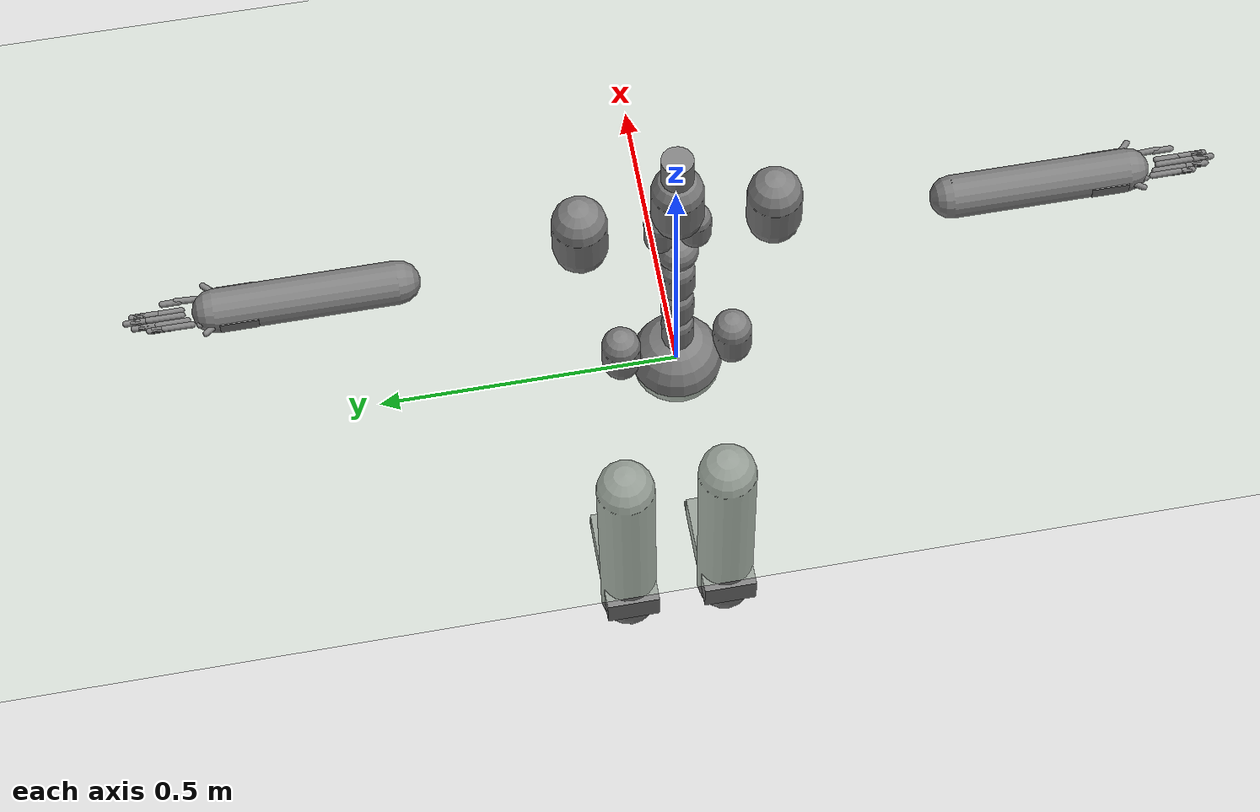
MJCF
<?xml version="1.0" ?>
<mujoco model="humanoid">
  <compiler coordinate="local"/>
  <statistic extent="2" center="0 0 1"/>
  <option timestep="0.00555"/>
  <default>
    <motor ctrlrange="-1 1" ctrllimited="true"/>
    <geom type="capsule" condim="1" friction="1.0 0.05 0.05" solimp=".9 .99 .003" solref=".015 1"/>
    <joint type="hinge" damping="0.1" stiffness="5" armature=".007" limited="true" solimplimit="0 .99 .01"/>
    <site size=".04" group="3"/>
  </default>
  <asset>
    <texture type="skybox" builtin="gradient" rgb1=".4 .5 .6" rgb2="0 0 0" width="100" height="100"/>
    <texture builtin="flat" height="1278" mark="cross" markrgb="1 1 1" name="texgeom" random="0.01" rgb1="0.8 0.6 0.4" rgb2="0.8 0.6 0.4" type="cube" width="127"/>
    <texture builtin="checker" height="100" name="texplane" rgb1="0 0 0" rgb2="0.8 0.8 0.8" type="2d" width="100"/>
    <material name="MatPlane" reflectance="0.5" shininess="1" specular="1" texrepeat="60 60" texture="texplane"/>
    <material name="geom" texture="texgeom" texuniform="true"/>
  </asset>
  <worldbody>
    <light cutoff="100" diffuse="1 1 1" dir="-0 0 -1.3" directional="true" exponent="1" pos="0 0 1.3" specular=".1 .1 .1"/>
    <geom conaffinity="1" condim="3" name="floor" pos="0 0 0" rgba="0.8 0.9 0.8 1" size="100 100 .2" type="plane" material="MatPlane"/>
    <body name="pHipOrigin" pos="0 0 0">
      <freejoint name="pHipOrigin"/>
      <geom type="sphere" contype="1" conaffinity="1" density="4629.6296296296305" size="0.07558" pos="0.0000 0.0000 -0.0000"/>
      <body name="jL5S1" pos="-0.00851642 0 0.07664758">
        <geom type="capsule" contype="1" conaffinity="1" density="1000" fromto="0 0 0.01542 0 0 0.05398" size="0.02699"/>
        <joint name="jL5S1_x" type="hinge" pos="0 0 0" axis="1 0 0" stiffness="500" damping="500" armature="0.02" range="-180.0000 180.0000"/>
        <joint name="jL5S1_y" type="hinge" pos="0 0 0" axis="0 1 0" stiffness="500" damping="500" armature="0.02" range="-180.0000 180.0000"/>
        <joint name="jL5S1_z" type="hinge" pos="0 0 0" axis="0 0 1" stiffness="500" damping="500" armature="0.02" range="-180.0000 180.0000"/>
        <body name="jL4L3" pos="0 0 0.07755035">
          <geom type="capsule" contype="1" conaffinity="1" density="1000" fromto="0 0 0.01551 0 0 0.05429" size="0.02714"/>
          <joint name="jL4L3_x" type="hinge" pos="0 0 0" axis="1 0 0" stiffness="500" damping="500" armature="0.02" range="-180.0000 180.0000"/>
          <joint name="jL4L3_y" type="hinge" pos="0 0 0" axis="0 1 0" stiffness="500" damping="500" armature="0.02" range="-180.0000 180.0000"/>
          <joint name="jL4L3_z" type="hinge" pos="0 0 0" axis="0 0 1" stiffness="500" damping="500" armature="0.02" range="-180.0000 180.0000"/>
          <body name="jL1T12" pos="-0.00063742 0 0.08262086">
            <geom type="capsule" contype="1" conaffinity="1" density="1000" fromto="0 0 0.01652 0 0 0.05784" size="0.02892"/>
            <joint name="jL1T12_x" type="hinge" pos="0 0 0" axis="1 0 0" stiffness="500" damping="500" armature="0.02" range="-180.0000 180.0000"/>
            <joint name="jL1T12_y" type="hinge" pos="0 0 0" axis="0 1 0" stiffness="500" damping="500" armature="0.02" range="-180.0000 180.0000"/>
            <joint name="jL1T12_z" type="hinge" pos="0 0 0" axis="0 0 1" stiffness="500" damping="500" armature="0.02" range="-180.0000 180.0000"/>
            <body name="jT9T8" pos="-0.00064641 0 0.08362377">
              <geom type="sphere" contype="1" conaffinity="1" density="1000" size="0.03345" pos="0.000 0.0000 0.033451"/>
              <joint name="jT9T8_x" type="hinge" pos="0 0 0" axis="1 0 0" stiffness="500" damping="500" armature="0.02" range="-180.0000 180.0000"/>
              <joint name="jT9T8_y" type="hinge" pos="0 0 0" axis="0 1 0" stiffness="500" damping="500" armature="0.02" range="-180.0000 180.0000"/>
              <joint name="jT9T8_z" type="hinge" pos="0 0 0" axis="0 0 1" stiffness="500" damping="500" armature="0.02" range="-180.0000 180.0000"/>
              <body name="jT1C7" pos="0 0 0.11981401">
                <geom type="capsule" contype="1" conaffinity="1" density="1000" fromto="0 0 0.02396 0 0 0.08387" size="0.04193"/>
                <joint name="jT1C7_x" type="hinge" pos="0 0 0" axis="1 0 0" stiffness="500" damping="500" armature="0.02" range="-180.0000 180.0000"/>
                <joint name="jT1C7_y" type="hinge" pos="0 0 0" axis="0 1 0" stiffness="500" damping="500" armature="0.02" range="-180.0000 180.0000"/>
                <joint name="jT1C7_z" type="hinge" pos="0 0 0" axis="0 0 1" stiffness="500" damping="500" armature="0.02" range="-180.0000 180.0000"/>
                <body name="jC1Head" pos="0.00099304 0 0.08417254">
                  <geom type="cylinder" contype="1" conaffinity="1" density="1000" fromto="0 0 0 0 0 0.08418" size="0.02525"/>
                  <joint name="jC1Head_x" type="hinge" pos="0 0 0" axis="1 0 0" stiffness="500" damping="500" armature="0.02" range="-180.0000 180.0000"/>
                  <joint name="jC1Head_y" type="hinge" pos="0 0 0" axis="0 1 0" stiffness="500" damping="500" armature="0.02" range="-180.0000 180.0000"/>
                  <joint name="jC1Head_z" type="hinge" pos="0 0 0" axis="0 0 1" stiffness="500" damping="500" armature="0.02" range="-180.0000 180.0000"/>
                </body>
              </body>
              <body name="jRightT4Shoulder" pos="0 -0.02793902 0.06812147">
                <geom type="capsule" contype="1" conaffinity="1" density="1000" fromto="0 0 0.01473 0 0 0.05154" size="0.02577"/>
                <joint name="jRightT4Shoulder_x" type="hinge" pos="0 0 0" axis="1 0 0" stiffness="500" damping="500" armature="0.02" range="-180.0000 180.0000"/>
                <joint name="jRightT4Shoulder_y" type="hinge" pos="0 0 0" axis="0 1 0" stiffness="500" damping="500" armature="0.02" range="-180.0000 180.0000"/>
                <joint name="jRightT4Shoulder_z" type="hinge" pos="0 0 0" axis="0 0 1" stiffness="500" damping="500" armature="0.02" range="-180.0000 180.0000"/>
                <body name="jRightShoulder" pos="0 -0.12468250 0">
                  <geom type="capsule" contype="1" conaffinity="1" density="1000" fromto="0 0 0.02494 0 0 0.08728" size="0.04364"/>
                  <joint name="jRightShoulder_x" type="hinge" pos="0 0 0" axis="1 0 0" stiffness="500" damping="500" armature="0.02" range="-180.0000 180.0000"/>
                  <joint name="jRightShoulder_y" type="hinge" pos="0 0 0" axis="0 1 0" stiffness="500" damping="500" armature="0.02" range="-180.0000 180.0000"/>
                  <joint name="jRightShoulder_z" type="hinge" pos="0 0 0" axis="0 0 1" stiffness="500" damping="500" armature="0.02" range="-180.0000 180.0000"/>
                  <body name="jRightElbow" pos="0 -0.28514770 0">
                    <geom type="capsule" contype="1" conaffinity="1" density="1000" fromto="0 0 0 0.00000000 -0.28514770 0.00000000" size="0.03422"/>
                    <joint name="jRightElbow_x" type="hinge" pos="0 0 0" axis="1 0 0" stiffness="500" damping="500" armature="0.02" range="-180.0000 180.0000"/>
                    <joint name="jRightElbow_y" type="hinge" pos="0 0 0" axis="0 1 0" stiffness="500" damping="500" armature="0.02" range="-180.0000 180.0000"/>
                    <joint name="jRightElbow_z" type="hinge" pos="0 0 0" axis="0 0 1" stiffness="500" damping="500" armature="0.02" range="-180.0000 180.0000"/>
                    <body name="jRightWrist" pos="0.00010069 -0.25017897 0">
                      <geom density="1000" type="box" pos="0 0 0" size="0.035 0.03 0.01" quat="1.0000 0.0000 0.0000 0.0000"/>
                      <joint name="jRightWrist_x" type="hinge" pos="0 0 0" axis="1 0 0" stiffness="500" damping="500" armature="0.02" range="-180.0000 180.0000"/>
                      <joint name="jRightWrist_y" type="hinge" pos="0 0 0" axis="0 1 0" stiffness="500" damping="500" armature="0.02" range="-180.0000 180.0000"/>
                      <joint name="jRightWrist_z" type="hinge" pos="0 0 0" axis="0 0 1" stiffness="500" damping="500" armature="0.02" range="-180.0000 180.0000"/>
                      <body name="jRightFirstCMC" pos="0.02501759 -0.02398076 -0.00113295">
                        <geom type="capsule" contype="1" conaffinity="1" density="1000" fromto="0 0 0 0.02501759 -0.02398076 -0.00113295" size="0.005"/>
                        <joint name="jRightFirstCMC_x" type="hinge" pos="0 0 0" axis="1 0 0" stiffness="500" damping="500" armature="0.02" range="-180.0000 180.0000"/>
                        <joint name="jRightFirstCMC_y" type="hinge" pos="0 0 0" axis="0 1 0" stiffness="500" damping="500" armature="0.02" range="-180.0000 180.0000"/>
                        <joint name="jRightFirstCMC_z" type="hinge" pos="0 0 0" axis="0 0 1" stiffness="500" damping="500" armature="0.02" range="-180.0000 180.0000"/>
                        <body name="jRightFirstMCP" pos="0.00121909 -0.03440180 0.00072691">
                          <geom type="capsule" contype="1" conaffinity="1" density="1000" fromto="0 0 0 0.00121909 -0.03440180 0.00072691" size="0.005"/>
                          <joint name="jRightFirstMCP_x" type="hinge" pos="0 0 0" axis="1 0 0" stiffness="500" damping="500" armature="0.02" range="-180.0000 180.0000"/>
                          <joint name="jRightFirstMCP_y" type="hinge" pos="0 0 0" axis="0 1 0" stiffness="500" damping="500" armature="0.02" range="-180.0000 180.0000"/>
                          <joint name="jRightFirstMCP_z" type="hinge" pos="0 0 0" axis="0 0 1" stiffness="500" damping="500" armature="0.02" range="-180.0000 180.0000"/>
                          <body name="jRightIP" pos="0 -0.02740153 0">
                            <geom type="capsule" contype="1" conaffinity="1" density="1000" fromto="0 0 0 0.00000000 -0.02740153 0.00000000" size="0.005"/>
                            <joint name="jRightIP_x" type="hinge" pos="0 0 0" axis="1 0 0" stiffness="500" damping="500" armature="0.02" range="-180.0000 180.0000"/>
                            <joint name="jRightIP_y" type="hinge" pos="0 0 0" axis="0 1 0" stiffness="500" damping="500" armature="0.02" range="-180.0000 180.0000"/>
                            <joint name="jRightIP_z" type="hinge" pos="0 0 0" axis="0 0 1" stiffness="500" damping="500" armature="0.02" range="-180.0000 180.0000"/>
                          </body>
                        </body>
                      </body>
                      <body name="jRightSecondCMC" pos="0.01038139 -0.03033113 -0.00052905">
                        <geom type="capsule" contype="1" conaffinity="1" density="1000" fromto="0 0 0 0.01038139 -0.03033113 -0.00052905" size="0.005"/>
                        <joint name="jRightSecondCMC_x" type="hinge" pos="0 0 0" axis="1 0 0" stiffness="500" damping="500" armature="0.02" range="-180.0000 180.0000"/>
                        <joint name="jRightSecondCMC_y" type="hinge" pos="0 0 0" axis="0 1 0" stiffness="500" damping="500" armature="0.02" range="-180.0000 180.0000"/>
                        <joint name="jRightSecondCMC_z" type="hinge" pos="0 0 0" axis="0 0 1" stiffness="500" damping="500" armature="0.02" range="-180.0000 180.0000"/>
                        <body name="jRightSecondMCP" pos="-0.00034842 -0.05556996 -0.00057644">
                          <geom type="capsule" contype="1" conaffinity="1" density="1000" fromto="0 0 0 -0.00034842 -0.05556996 -0.00057644" size="0.005"/>
                          <joint name="jRightSecondMCP_x" type="hinge" pos="0 0 0" axis="1 0 0" stiffness="500" damping="500" armature="0.02" range="-180.0000 180.0000"/>
                          <joint name="jRightSecondMCP_y" type="hinge" pos="0 0 0" axis="0 1 0" stiffness="500" damping="500" armature="0.02" range="-180.0000 180.0000"/>
                          <joint name="jRightSecondMCP_z" type="hinge" pos="0 0 0" axis="0 0 1" stiffness="500" damping="500" armature="0.02" range="-180.0000 180.0000"/>
                          <body name="jRightSecondPIP" pos="0 -0.03668946 0">
                            <geom type="capsule" contype="1" conaffinity="1" density="1000" fromto="0 0 0 0.00000000 -0.03668946 0.00000000" size="0.005"/>
                            <joint name="jRightSecondPIP_x" type="hinge" pos="0 0 0" axis="1 0 0" stiffness="500" damping="500" armature="0.02" range="-180.0000 180.0000"/>
                            <joint name="jRightSecondPIP_y" type="hinge" pos="0 0 0" axis="0 1 0" stiffness="500" damping="500" armature="0.02" range="-180.0000 180.0000"/>
                            <joint name="jRightSecondPIP_z" type="hinge" pos="0 0 0" axis="0 0 1" stiffness="500" damping="500" armature="0.02" range="-180.0000 180.0000"/>
                            <body name="jRightSecondDIP" pos="0 -0.01992485 0">
                              <geom type="capsule" contype="1" conaffinity="1" density="1000" fromto="0 0 0 0.00000000 -0.01992485 0.00000000" size="0.005"/>
                              <joint name="jRightSecondDIP_x" type="hinge" pos="0 0 0" axis="1 0 0" stiffness="500" damping="500" armature="0.02" range="-180.0000 180.0000"/>
                              <joint name="jRightSecondDIP_y" type="hinge" pos="0 0 0" axis="0 1 0" stiffness="500" damping="500" armature="0.02" range="-180.0000 180.0000"/>
                              <joint name="jRightSecondDIP_z" type="hinge" pos="0 0 0" axis="0 0 1" stiffness="500" damping="500" armature="0.02" range="-180.0000 180.0000"/>
                            </body>
                          </body>
                        </body>
                      </body>
                      <body name="jRightThirdCMC" pos="-0.00058933 -0.03186959 0.00133985">
                        <geom type="capsule" contype="1" conaffinity="1" density="1000" fromto="0 0 0 -0.00058933 -0.03186959 0.00133985" size="0.005"/>
                        <joint name="jRightThirdCMC_x" type="hinge" pos="0 0 0" axis="1 0 0" stiffness="500" damping="500" armature="0.02" range="-180.0000 180.0000"/>
                        <joint name="jRightThirdCMC_y" type="hinge" pos="0 0 0" axis="0 1 0" stiffness="500" damping="500" armature="0.02" range="-180.0000 180.0000"/>
                        <joint name="jRightThirdCMC_z" type="hinge" pos="0 0 0" axis="0 0 1" stiffness="500" damping="500" armature="0.02" range="-180.0000 180.0000"/>
                        <body name="jRightThirdMCP" pos="-0.00064230 -0.05321438 0.00144776">
                          <geom type="capsule" contype="1" conaffinity="1" density="1000" fromto="0 0 0 -0.00064230 -0.05321438 0.00144776" size="0.005"/>
                          <joint name="jRightThirdMCP_x" type="hinge" pos="0 0 0" axis="1 0 0" stiffness="500" damping="500" armature="0.02" range="-180.0000 180.0000"/>
                          <joint name="jRightThirdMCP_y" type="hinge" pos="0 0 0" axis="0 1 0" stiffness="500" damping="500" armature="0.02" range="-180.0000 180.0000"/>
                          <joint name="jRightThirdMCP_z" type="hinge" pos="0 0 0" axis="0 0 1" stiffness="500" damping="500" armature="0.02" range="-180.0000 180.0000"/>
                          <body name="jRightThirdPIP" pos="0 -0.03993919 0">
                            <geom type="capsule" contype="1" conaffinity="1" density="1000" fromto="0 0 0 0.00000000 -0.03993919 0.00000000" size="0.005"/>
                            <joint name="jRightThirdPIP_x" type="hinge" pos="0 0 0" axis="1 0 0" stiffness="500" damping="500" armature="0.02" range="-180.0000 180.0000"/>
                            <joint name="jRightThirdPIP_y" type="hinge" pos="0 0 0" axis="0 1 0" stiffness="500" damping="500" armature="0.02" range="-180.0000 180.0000"/>
                            <joint name="jRightThirdPIP_z" type="hinge" pos="0 0 0" axis="0 0 1" stiffness="500" damping="500" armature="0.02" range="-180.0000 180.0000"/>
                            <body name="jRightThirdDIP" pos="0 -0.02361077 0">
                              <geom type="capsule" contype="1" conaffinity="1" density="1000" fromto="0 0 0 0.00000000 -0.02361077 0.00000000" size="0.005"/>
                              <joint name="jRightThirdDIP_x" type="hinge" pos="0 0 0" axis="1 0 0" stiffness="500" damping="500" armature="0.02" range="-180.0000 180.0000"/>
                              <joint name="jRightThirdDIP_y" type="hinge" pos="0 0 0" axis="0 1 0" stiffness="500" damping="500" armature="0.02" range="-180.0000 180.0000"/>
                              <joint name="jRightThirdDIP_z" type="hinge" pos="0 0 0" axis="0 0 1" stiffness="500" damping="500" armature="0.02" range="-180.0000 180.0000"/>
                            </body>
                          </body>
                        </body>
                      </body>
                      <body name="jRightFourthCMC" pos="-0.01083873 -0.03018766 0.00071057">
                        <geom type="capsule" contype="1" conaffinity="1" density="1000" fromto="0 0 0 -0.01083873 -0.03018766 0.00071057" size="0.005"/>
                        <joint name="jRightFourthCMC_x" type="hinge" pos="0 0 0" axis="1 0 0" stiffness="500" damping="500" armature="0.02" range="-180.0000 180.0000"/>
                        <joint name="jRightFourthCMC_y" type="hinge" pos="0 0 0" axis="0 1 0" stiffness="500" damping="500" armature="0.02" range="-180.0000 180.0000"/>
                        <joint name="jRightFourthCMC_z" type="hinge" pos="0 0 0" axis="0 0 1" stiffness="500" damping="500" armature="0.02" range="-180.0000 180.0000"/>
                        <body name="jRightFourthMCP" pos="-0.00034617 -0.04744587 0.00074541">
                          <geom type="capsule" contype="1" conaffinity="1" density="1000" fromto="0 0 0 -0.00034617 -0.04744587 0.00074541" size="0.005"/>
                          <joint name="jRightFourthMCP_x" type="hinge" pos="0 0 0" axis="1 0 0" stiffness="500" damping="500" armature="0.02" range="-180.0000 180.0000"/>
                          <joint name="jRightFourthMCP_y" type="hinge" pos="0 0 0" axis="0 1 0" stiffness="500" damping="500" armature="0.02" range="-180.0000 180.0000"/>
                          <joint name="jRightFourthMCP_z" type="hinge" pos="0 0 0" axis="0 0 1" stiffness="500" damping="500" armature="0.02" range="-180.0000 180.0000"/>
                          <body name="jRightFourthPIP" pos="0 -0.03789558 0">
                            <geom type="capsule" contype="1" conaffinity="1" density="1000" fromto="0 0 0 0.00000000 -0.03789558 0.00000000" size="0.005"/>
                            <joint name="jRightFourthPIP_x" type="hinge" pos="0 0 0" axis="1 0 0" stiffness="500" damping="500" armature="0.02" range="-180.0000 180.0000"/>
                            <joint name="jRightFourthPIP_y" type="hinge" pos="0 0 0" axis="0 1 0" stiffness="500" damping="500" armature="0.02" range="-180.0000 180.0000"/>
                            <joint name="jRightFourthPIP_z" type="hinge" pos="0 0 0" axis="0 0 1" stiffness="500" damping="500" armature="0.02" range="-180.0000 180.0000"/>
                            <body name="jRightFourthDIP" pos="0 -0.02244063 0">
                              <geom type="capsule" contype="1" conaffinity="1" density="1000" fromto="0 0 0 0.00000000 -0.02244063 0.00000000" size="0.005"/>
                              <joint name="jRightFourthDIP_x" type="hinge" pos="0 0 0" axis="1 0 0" stiffness="500" damping="500" armature="0.02" range="-180.0000 180.0000"/>
                              <joint name="jRightFourthDIP_y" type="hinge" pos="0 0 0" axis="0 1 0" stiffness="500" damping="500" armature="0.02" range="-180.0000 180.0000"/>
                              <joint name="jRightFourthDIP_z" type="hinge" pos="0 0 0" axis="0 0 1" stiffness="500" damping="500" armature="0.02" range="-180.0000 180.0000"/>
                            </body>
                          </body>
                        </body>
                      </body>
                      <body name="jRightFifthCMC" pos="-0.01904417 -0.02653587 0.00052347">
                        <geom type="capsule" contype="1" conaffinity="1" density="1000" fromto="0 0 0 -0.01904417 -0.02653587 0.00052347" size="0.005"/>
                        <joint name="jRightFifthCMC_x" type="hinge" pos="0 0 0" axis="1 0 0" stiffness="500" damping="500" armature="0.02" range="-180.0000 180.0000"/>
                        <joint name="jRightFifthCMC_y" type="hinge" pos="0 0 0" axis="0 1 0" stiffness="500" damping="500" armature="0.02" range="-180.0000 180.0000"/>
                        <joint name="jRightFifthCMC_z" type="hinge" pos="0 0 0" axis="0 0 1" stiffness="500" damping="500" armature="0.02" range="-180.0000 180.0000"/>
                        <body name="jRightFifthMCP" pos="-0.00000665 -0.04503981 0.00061980">
                          <geom type="capsule" contype="1" conaffinity="1" density="1000" fromto="0 0 0 -0.00000665 -0.04503981 0.00061980" size="0.005"/>
                          <joint name="jRightFifthMCP_x" type="hinge" pos="0 0 0" axis="1 0 0" stiffness="500" damping="500" armature="0.02" range="-180.0000 180.0000"/>
                          <joint name="jRightFifthMCP_y" type="hinge" pos="0 0 0" axis="0 1 0" stiffness="500" damping="500" armature="0.02" range="-180.0000 180.0000"/>
                          <joint name="jRightFifthMCP_z" type="hinge" pos="0 0 0" axis="0 0 1" stiffness="500" damping="500" armature="0.02" range="-180.0000 180.0000"/>
                          <body name="jRightFifthPIP" pos="0 -0.03164419 0">
                            <geom type="capsule" contype="1" conaffinity="1" density="1000" fromto="0 0 0 0.00000000 -0.03164419 0.00000000" size="0.005"/>
                            <joint name="jRightFifthPIP_x" type="hinge" pos="0 0 0" axis="1 0 0" stiffness="500" damping="500" armature="0.02" range="-180.0000 180.0000"/>
                            <joint name="jRightFifthPIP_y" type="hinge" pos="0 0 0" axis="0 1 0" stiffness="500" damping="500" armature="0.02" range="-180.0000 180.0000"/>
                            <joint name="jRightFifthPIP_z" type="hinge" pos="0 0 0" axis="0 0 1" stiffness="500" damping="500" armature="0.02" range="-180.0000 180.0000"/>
                            <body name="jRightFifthDIP" pos="0 -0.01717060 0">
                              <geom type="capsule" contype="1" conaffinity="1" density="1000" fromto="0 0 0 0.00000000 -0.01717060 0.00000000" size="0.005"/>
                              <joint name="jRightFifthDIP_x" type="hinge" pos="0 0 0" axis="1 0 0" stiffness="500" damping="500" armature="0.02" range="-180.0000 180.0000"/>
                              <joint name="jRightFifthDIP_y" type="hinge" pos="0 0 0" axis="0 1 0" stiffness="500" damping="500" armature="0.02" range="-180.0000 180.0000"/>
                              <joint name="jRightFifthDIP_z" type="hinge" pos="0 0 0" axis="0 0 1" stiffness="500" damping="500" armature="0.02" range="-180.0000 180.0000"/>
                            </body>
                          </body>
                        </body>
                      </body>
                    </body>
                  </body>
                </body>
              </body>
              <body name="jLeftT4Shoulder" pos="0 0.02790276 0.06803305">
                <geom type="capsule" contype="1" conaffinity="1" density="1000" fromto="0 0 0.01471 0 0 0.05147" size="0.02574"/>
                <joint name="jLeftT4Shoulder_x" type="hinge" pos="0 0 0" axis="1 0 0" stiffness="500" damping="500" armature="0.02" range="-180.0000 180.0000"/>
                <joint name="jLeftT4Shoulder_y" type="hinge" pos="0 0 0" axis="0 1 0" stiffness="500" damping="500" armature="0.02" range="-180.0000 180.0000"/>
                <joint name="jLeftT4Shoulder_z" type="hinge" pos="0 0 0" axis="0 0 1" stiffness="500" damping="500" armature="0.02" range="-180.0000 180.0000"/>
                <body name="jLeftShoulder" pos="0 0.12534131 0">
                  <geom type="capsule" contype="1" conaffinity="1" density="1000" fromto="0 0 0.02507 0 0 0.08774" size="0.04387"/>
                  <joint name="jLeftShoulder_x" type="hinge" pos="0 0 0" axis="1 0 0" stiffness="500" damping="500" armature="0.02" range="-180.0000 180.0000"/>
                  <joint name="jLeftShoulder_y" type="hinge" pos="0 0 0" axis="0 1 0" stiffness="500" damping="500" armature="0.02" range="-180.0000 180.0000"/>
                  <joint name="jLeftShoulder_z" type="hinge" pos="0 0 0" axis="0 0 1" stiffness="500" damping="500" armature="0.02" range="-180.0000 180.0000"/>
                  <body name="jLeftElbow" pos="0 0.28614241 0">
                    <geom type="capsule" contype="1" conaffinity="1" density="1000" fromto="0 0 0 0.00000000 0.28614241 0.00000000" size="0.03434"/>
                    <joint name="jLeftElbow_x" type="hinge" pos="0 0 0" axis="1 0 0" stiffness="500" damping="500" armature="0.02" range="-180.0000 180.0000"/>
                    <joint name="jLeftElbow_y" type="hinge" pos="0 0 0" axis="0 1 0" stiffness="500" damping="500" armature="0.02" range="-180.0000 180.0000"/>
                    <joint name="jLeftElbow_z" type="hinge" pos="0 0 0" axis="0 0 1" stiffness="500" damping="500" armature="0.02" range="-180.0000 180.0000"/>
                    <body name="jLeftWrist" pos="0.00010069 0.25017897 0">
                      <geom density="1000" type="box" pos="0 0 0" size="0.035 0.03 0.01" quat="1.0000 0.0000 0.0000 0.0000"/>
                      <joint name="jLeftWrist_x" type="hinge" pos="0 0 0" axis="1 0 0" stiffness="500" damping="500" armature="0.02" range="-180.0000 180.0000"/>
                      <joint name="jLeftWrist_y" type="hinge" pos="0 0 0" axis="0 1 0" stiffness="500" damping="500" armature="0.02" range="-180.0000 180.0000"/>
                      <joint name="jLeftWrist_z" type="hinge" pos="0 0 0" axis="0 0 1" stiffness="500" damping="500" armature="0.02" range="-180.0000 180.0000"/>
                      <body name="jLeftFirstCMC" pos="0.02448632 0.02454415 -0.00109593">
                        <geom type="capsule" contype="1" conaffinity="1" density="1000" fromto="0 0 0 0.02448632 0.02454415 -0.00109593" size="0.005"/>
                        <joint name="jLeftFirstCMC_x" type="hinge" pos="0 0 0" axis="1 0 0" stiffness="500" damping="500" armature="0.02" range="-180.0000 180.0000"/>
                        <joint name="jLeftFirstCMC_y" type="hinge" pos="0 0 0" axis="0 1 0" stiffness="500" damping="500" armature="0.02" range="-180.0000 180.0000"/>
                        <joint name="jLeftFirstCMC_z" type="hinge" pos="0 0 0" axis="0 0 1" stiffness="500" damping="500" armature="0.02" range="-180.0000 180.0000"/>
                        <body name="jLeftFirstMCP" pos="0.00120734 0.03440103 0.00070840">
                          <geom type="capsule" contype="1" conaffinity="1" density="1000" fromto="0 0 0 0.00120734 0.03440103 0.00070840" size="0.005"/>
                          <joint name="jLeftFirstMCP_x" type="hinge" pos="0 0 0" axis="1 0 0" stiffness="500" damping="500" armature="0.02" range="-180.0000 180.0000"/>
                          <joint name="jLeftFirstMCP_y" type="hinge" pos="0 0 0" axis="0 1 0" stiffness="500" damping="500" armature="0.02" range="-180.0000 180.0000"/>
                          <joint name="jLeftFirstMCP_z" type="hinge" pos="0 0 0" axis="0 0 1" stiffness="500" damping="500" armature="0.02" range="-180.0000 180.0000"/>
                          <body name="jLeftIP" pos="0 0.02740153 0">
                            <geom type="capsule" contype="1" conaffinity="1" density="1000" fromto="0 0 0 0.00000000 0.02740153 0.00000000" size="0.005"/>
                            <joint name="jLeftIP_x" type="hinge" pos="0 0 0" axis="1 0 0" stiffness="500" damping="500" armature="0.02" range="-180.0000 180.0000"/>
                            <joint name="jLeftIP_y" type="hinge" pos="0 0 0" axis="0 1 0" stiffness="500" damping="500" armature="0.02" range="-180.0000 180.0000"/>
                            <joint name="jLeftIP_z" type="hinge" pos="0 0 0" axis="0 0 1" stiffness="500" damping="500" armature="0.02" range="-180.0000 180.0000"/>
                          </body>
                        </body>
                      </body>
                      <body name="jLeftSecondCMC" pos="0.01050096 0.03027532 -0.00053342">
                        <geom type="capsule" contype="1" conaffinity="1" density="1000" fromto="0 0 0 0.01050096 0.03027532 -0.00053342" size="0.005"/>
                        <joint name="jLeftSecondCMC_x" type="hinge" pos="0 0 0" axis="1 0 0" stiffness="500" damping="500" armature="0.02" range="-180.0000 180.0000"/>
                        <joint name="jLeftSecondCMC_y" type="hinge" pos="0 0 0" axis="0 1 0" stiffness="500" damping="500" armature="0.02" range="-180.0000 180.0000"/>
                        <joint name="jLeftSecondCMC_z" type="hinge" pos="0 0 0" axis="0 0 1" stiffness="500" damping="500" armature="0.02" range="-180.0000 180.0000"/>
                        <body name="jLeftSecondMCP" pos="-0.00030380 0.05557110 -0.00058357">
                          <geom type="capsule" contype="1" conaffinity="1" density="1000" fromto="0 0 0 -0.00030380 0.05557110 -0.00058357" size="0.005"/>
                          <joint name="jLeftSecondMCP_x" type="hinge" pos="0 0 0" axis="1 0 0" stiffness="500" damping="500" armature="0.02" range="-180.0000 180.0000"/>
                          <joint name="jLeftSecondMCP_y" type="hinge" pos="0 0 0" axis="0 1 0" stiffness="500" damping="500" armature="0.02" range="-180.0000 180.0000"/>
                          <joint name="jLeftSecondMCP_z" type="hinge" pos="0 0 0" axis="0 0 1" stiffness="500" damping="500" armature="0.02" range="-180.0000 180.0000"/>
                          <body name="jLeftSecondPIP" pos="0 0.03668946 0">
                            <geom type="capsule" contype="1" conaffinity="1" density="1000" fromto="0 0 0 0.00000000 0.03668946 0.00000000" size="0.005"/>
                            <joint name="jLeftSecondPIP_x" type="hinge" pos="0 0 0" axis="1 0 0" stiffness="500" damping="500" armature="0.02" range="-180.0000 180.0000"/>
                            <joint name="jLeftSecondPIP_y" type="hinge" pos="0 0 0" axis="0 1 0" stiffness="500" damping="500" armature="0.02" range="-180.0000 180.0000"/>
                            <joint name="jLeftSecondPIP_z" type="hinge" pos="0 0 0" axis="0 0 1" stiffness="500" damping="500" armature="0.02" range="-180.0000 180.0000"/>
                            <body name="jLeftSecondDIP" pos="0 0.01992485 0">
                              <geom type="capsule" contype="1" conaffinity="1" density="1000" fromto="0 0 0 0.00000000 0.01992485 0.00000000" size="0.005"/>
                              <joint name="jLeftSecondDIP_x" type="hinge" pos="0 0 0" axis="1 0 0" stiffness="500" damping="500" armature="0.02" range="-180.0000 180.0000"/>
                              <joint name="jLeftSecondDIP_y" type="hinge" pos="0 0 0" axis="0 1 0" stiffness="500" damping="500" armature="0.02" range="-180.0000 180.0000"/>
                              <joint name="jLeftSecondDIP_z" type="hinge" pos="0 0 0" axis="0 0 1" stiffness="500" damping="500" armature="0.02" range="-180.0000 180.0000"/>
                            </body>
                          </body>
                        </body>
                      </body>
                      <body name="jLeftThirdCMC" pos="-0.00059279 0.03187245 0.00129518">
                        <geom type="capsule" contype="1" conaffinity="1" density="1000" fromto="0 0 0 -0.00059279 0.03187245 0.00129518" size="0.005"/>
                        <joint name="jLeftThirdCMC_x" type="hinge" pos="0 0 0" axis="1 0 0" stiffness="500" damping="500" armature="0.02" range="-180.0000 180.0000"/>
                        <joint name="jLeftThirdCMC_y" type="hinge" pos="0 0 0" axis="0 1 0" stiffness="500" damping="500" armature="0.02" range="-180.0000 180.0000"/>
                        <joint name="jLeftThirdCMC_z" type="hinge" pos="0 0 0" axis="0 0 1" stiffness="500" damping="500" armature="0.02" range="-180.0000 180.0000"/>
                        <body name="jLeftThirdMCP" pos="-0.00064748 0.05321541 0.00141865">
                          <geom type="capsule" contype="1" conaffinity="1" density="1000" fromto="0 0 0 -0.00064748 0.05321541 0.00141865" size="0.005"/>
                          <joint name="jLeftThirdMCP_x" type="hinge" pos="0 0 0" axis="1 0 0" stiffness="500" damping="500" armature="0.02" range="-180.0000 180.0000"/>
                          <joint name="jLeftThirdMCP_y" type="hinge" pos="0 0 0" axis="0 1 0" stiffness="500" damping="500" armature="0.02" range="-180.0000 180.0000"/>
                          <joint name="jLeftThirdMCP_z" type="hinge" pos="0 0 0" axis="0 0 1" stiffness="500" damping="500" armature="0.02" range="-180.0000 180.0000"/>
                          <body name="jLeftThirdPIP" pos="0 0.03993919 0">
                            <geom type="capsule" contype="1" conaffinity="1" density="1000" fromto="0 0 0 0.00000000 0.03993919 0.00000000" size="0.005"/>
                            <joint name="jLeftThirdPIP_x" type="hinge" pos="0 0 0" axis="1 0 0" stiffness="500" damping="500" armature="0.02" range="-180.0000 180.0000"/>
                            <joint name="jLeftThirdPIP_y" type="hinge" pos="0 0 0" axis="0 1 0" stiffness="500" damping="500" armature="0.02" range="-180.0000 180.0000"/>
                            <joint name="jLeftThirdPIP_z" type="hinge" pos="0 0 0" axis="0 0 1" stiffness="500" damping="500" armature="0.02" range="-180.0000 180.0000"/>
                            <body name="jLeftThirdDIP" pos="0 0.02361077 0">
                              <geom type="capsule" contype="1" conaffinity="1" density="1000" fromto="0 0 0 0.00000000 0.02361077 0.00000000" size="0.005"/>
                              <joint name="jLeftThirdDIP_x" type="hinge" pos="0 0 0" axis="1 0 0" stiffness="500" damping="500" armature="0.02" range="-180.0000 180.0000"/>
                              <joint name="jLeftThirdDIP_y" type="hinge" pos="0 0 0" axis="0 1 0" stiffness="500" damping="500" armature="0.02" range="-180.0000 180.0000"/>
                              <joint name="jLeftThirdDIP_z" type="hinge" pos="0 0 0" axis="0 0 1" stiffness="500" damping="500" armature="0.02" range="-180.0000 180.0000"/>
                            </body>
                          </body>
                        </body>
                      </body>
                      <body name="jLeftFourthCMC" pos="-0.01123644 0.03003325 0.00075853">
                        <geom type="capsule" contype="1" conaffinity="1" density="1000" fromto="0 0 0 -0.01123644 0.03003325 0.00075853" size="0.005"/>
                        <joint name="jLeftFourthCMC_x" type="hinge" pos="0 0 0" axis="1 0 0" stiffness="500" damping="500" armature="0.02" range="-180.0000 180.0000"/>
                        <joint name="jLeftFourthCMC_y" type="hinge" pos="0 0 0" axis="0 1 0" stiffness="500" damping="500" armature="0.02" range="-180.0000 180.0000"/>
                        <joint name="jLeftFourthCMC_z" type="hinge" pos="0 0 0" axis="0 0 1" stiffness="500" damping="500" armature="0.02" range="-180.0000 180.0000"/>
                        <body name="jLeftFourthMCP" pos="-0.00037227 0.04744316 0.00078836">
                          <geom type="capsule" contype="1" conaffinity="1" density="1000" fromto="0 0 0 -0.00037227 0.04744316 0.00078836" size="0.005"/>
                          <joint name="jLeftFourthMCP_x" type="hinge" pos="0 0 0" axis="1 0 0" stiffness="500" damping="500" armature="0.02" range="-180.0000 180.0000"/>
                          <joint name="jLeftFourthMCP_y" type="hinge" pos="0 0 0" axis="0 1 0" stiffness="500" damping="500" armature="0.02" range="-180.0000 180.0000"/>
                          <joint name="jLeftFourthMCP_z" type="hinge" pos="0 0 0" axis="0 0 1" stiffness="500" damping="500" armature="0.02" range="-180.0000 180.0000"/>
                          <body name="jLeftFourthPIP" pos="0 0.03789558 0">
                            <geom type="capsule" contype="1" conaffinity="1" density="1000" fromto="0 0 0 0.00000000 0.03789558 0.00000000" size="0.005"/>
                            <joint name="jLeftFourthPIP_x" type="hinge" pos="0 0 0" axis="1 0 0" stiffness="500" damping="500" armature="0.02" range="-180.0000 180.0000"/>
                            <joint name="jLeftFourthPIP_y" type="hinge" pos="0 0 0" axis="0 1 0" stiffness="500" damping="500" armature="0.02" range="-180.0000 180.0000"/>
                            <joint name="jLeftFourthPIP_z" type="hinge" pos="0 0 0" axis="0 0 1" stiffness="500" damping="500" armature="0.02" range="-180.0000 180.0000"/>
                            <body name="jLeftFourthDIP" pos="0 0.02244063 0">
                              <geom type="capsule" contype="1" conaffinity="1" density="1000" fromto="0 0 0 0.00000000 0.02244063 0.00000000" size="0.005"/>
                              <joint name="jLeftFourthDIP_x" type="hinge" pos="0 0 0" axis="1 0 0" stiffness="500" damping="500" armature="0.02" range="-180.0000 180.0000"/>
                              <joint name="jLeftFourthDIP_y" type="hinge" pos="0 0 0" axis="0 1 0" stiffness="500" damping="500" armature="0.02" range="-180.0000 180.0000"/>
                              <joint name="jLeftFourthDIP_z" type="hinge" pos="0 0 0" axis="0 0 1" stiffness="500" damping="500" armature="0.02" range="-180.0000 180.0000"/>
                            </body>
                          </body>
                        </body>
                      </body>
                      <body name="jLeftFifthCMC" pos="-0.01962109 0.02611636 0.00053188">
                        <geom type="capsule" contype="1" conaffinity="1" density="1000" fromto="0 0 0 -0.01962109 0.02611636 0.00053188" size="0.005"/>
                        <joint name="jLeftFifthCMC_x" type="hinge" pos="0 0 0" axis="1 0 0" stiffness="500" damping="500" armature="0.02" range="-180.0000 180.0000"/>
                        <joint name="jLeftFifthCMC_y" type="hinge" pos="0 0 0" axis="0 1 0" stiffness="500" damping="500" armature="0.02" range="-180.0000 180.0000"/>
                        <joint name="jLeftFifthCMC_z" type="hinge" pos="0 0 0" axis="0 0 1" stiffness="500" damping="500" armature="0.02" range="-180.0000 180.0000"/>
                        <body name="jLeftFifthMCP" pos="-0.00001277 0.04503858 0.00064808">
                          <geom type="capsule" contype="1" conaffinity="1" density="1000" fromto="0 0 0 -0.00001277 0.04503858 0.00064808" size="0.005"/>
                          <joint name="jLeftFifthMCP_x" type="hinge" pos="0 0 0" axis="1 0 0" stiffness="500" damping="500" armature="0.02" range="-180.0000 180.0000"/>
                          <joint name="jLeftFifthMCP_y" type="hinge" pos="0 0 0" axis="0 1 0" stiffness="500" damping="500" armature="0.02" range="-180.0000 180.0000"/>
                          <joint name="jLeftFifthMCP_z" type="hinge" pos="0 0 0" axis="0 0 1" stiffness="500" damping="500" armature="0.02" range="-180.0000 180.0000"/>
                          <body name="jLeftFifthPIP" pos="0 0.03164419 0">
                            <geom type="capsule" contype="1" conaffinity="1" density="1000" fromto="0 0 0 0.00000000 0.03164419 0.00000000" size="0.005"/>
                            <joint name="jLeftFifthPIP_x" type="hinge" pos="0 0 0" axis="1 0 0" stiffness="500" damping="500" armature="0.02" range="-180.0000 180.0000"/>
                            <joint name="jLeftFifthPIP_y" type="hinge" pos="0 0 0" axis="0 1 0" stiffness="500" damping="500" armature="0.02" range="-180.0000 180.0000"/>
                            <joint name="jLeftFifthPIP_z" type="hinge" pos="0 0 0" axis="0 0 1" stiffness="500" damping="500" armature="0.02" range="-180.0000 180.0000"/>
                            <body name="jLeftFifthDIP" pos="0 0.01717060 0">
                              <geom type="capsule" contype="1" conaffinity="1" density="1000" fromto="0 0 0 0.00000000 0.01717060 0.00000000" size="0.005"/>
                              <joint name="jLeftFifthDIP_x" type="hinge" pos="0 0 0" axis="1 0 0" stiffness="500" damping="500" armature="0.02" range="-180.0000 180.0000"/>
                              <joint name="jLeftFifthDIP_y" type="hinge" pos="0 0 0" axis="0 1 0" stiffness="500" damping="500" armature="0.02" range="-180.0000 180.0000"/>
                              <joint name="jLeftFifthDIP_z" type="hinge" pos="0 0 0" axis="0 0 1" stiffness="500" damping="500" armature="0.02" range="-180.0000 180.0000"/>
                            </body>
                          </body>
                        </body>
                      </body>
                    </body>
                  </body>
                </body>
              </body>
            </body>
          </body>
        </body>
      </body>
      <body name="jRightHip" pos="-0.00015886 -0.09427283 0.00143009">
        <geom type="capsule" contype="1" conaffinity="1" density="1000" fromto="0 0 0.01886 0 0 0.06600" size="0.03300"/>
        <joint name="jRightHip_x" type="hinge" pos="0 0 0" axis="1 0 0" stiffness="500" damping="500" armature="0.02" range="-180.0000 180.0000"/>
        <joint name="jRightHip_y" type="hinge" pos="0 0 0" axis="0 1 0" stiffness="500" damping="500" armature="0.02" range="-180.0000 180.0000"/>
        <joint name="jRightHip_z" type="hinge" pos="0 0 0" axis="0 0 1" stiffness="500" damping="500" armature="0.02" range="-180.0000 180.0000"/>
        <body name="jRightKnee" pos="0.00005362 0 -0.44974932">
          <geom type="capsule" contype="1" conaffinity="1" density="1000" fromto="0 0 0 0.00005362 0.00000000 -0.44974932" size="0.05397"/>
          <joint name="jRightKnee_x" type="hinge" pos="0 0 0" axis="1 0 0" stiffness="500" damping="500" armature="0.02" range="-180.0000 180.0000"/>
          <joint name="jRightKnee_y" type="hinge" pos="0 0 0" axis="0 1 0" stiffness="500" damping="500" armature="0.02" range="-180.0000 180.0000"/>
          <joint name="jRightKnee_z" type="hinge" pos="0 0 0" axis="0 0 1" stiffness="500" damping="500" armature="0.02" range="-180.0000 180.0000"/>
          <body name="jRightAnkle" pos="0.00040428 0 -0.35803786">
            <geom density="1000" type="box" pos="0.04 0. -0.03" size="0.1 0.05 0.03" quat="1.0 0 0 0"/>
            <joint name="jRightAnkle_x" type="hinge" pos="0 0 0" axis="1 0 0" stiffness="500" damping="500" armature="0.02" range="-180.0000 180.0000"/>
            <joint name="jRightAnkle_y" type="hinge" pos="0 0 0" axis="0 1 0" stiffness="500" damping="500" armature="0.02" range="-180.0000 180.0000"/>
            <joint name="jRightAnkle_z" type="hinge" pos="0 0 0" axis="0 0 1" stiffness="500" damping="500" armature="0.02" range="-180.0000 180.0000"/>
            <body name="jRightBallFoot" pos="0.14477892 0 -0.06641893">
              <geom density="1000" type="box" pos="0 0 0.02" size="0.01 0.05 0.01" quat="1.0 0 0 0"/>
              <joint name="jRightBallFoot_x" type="hinge" pos="0 0 0" axis="1 0 0" stiffness="500" damping="500" armature="0.02" range="-180.0000 180.0000"/>
              <joint name="jRightBallFoot_y" type="hinge" pos="0 0 0" axis="0 1 0" stiffness="500" damping="500" armature="0.02" range="-180.0000 180.0000"/>
              <joint name="jRightBallFoot_z" type="hinge" pos="0 0 0" axis="0 0 1" stiffness="500" damping="500" armature="0.02" range="-180.0000 180.0000"/>
            </body>
          </body>
        </body>
      </body>
      <body name="jLeftHip" pos="-0.00015512 0.09325689 0.00139597">
        <geom type="capsule" contype="1" conaffinity="1" density="1000" fromto="0 0 0.01865 0 0 0.06529" size="0.03264"/>
        <joint name="jLeftHip_x" type="hinge" pos="0 0 0" axis="1 0 0" stiffness="500" damping="500" armature="0.02" range="-180.0000 180.0000"/>
        <joint name="jLeftHip_y" type="hinge" pos="0 0 0" axis="0 1 0" stiffness="500" damping="500" armature="0.02" range="-180.0000 180.0000"/>
        <joint name="jLeftHip_z" type="hinge" pos="0 0 0" axis="0 0 1" stiffness="500" damping="500" armature="0.02" range="-180.0000 180.0000"/>
        <body name="jLeftKnee" pos="0.00005363 0 -0.44977906">
          <geom type="capsule" contype="1" conaffinity="1" density="1000" fromto="0 0 0 0.00005363 0.00000000 -0.44977906" size="0.05397"/>
          <joint name="jLeftKnee_x" type="hinge" pos="0 0 0" axis="1 0 0" stiffness="500" damping="500" armature="0.02" range="-180.0000 180.0000"/>
          <joint name="jLeftKnee_y" type="hinge" pos="0 0 0" axis="0 1 0" stiffness="500" damping="500" armature="0.02" range="-180.0000 180.0000"/>
          <joint name="jLeftKnee_z" type="hinge" pos="0 0 0" axis="0 0 1" stiffness="500" damping="500" armature="0.02" range="-180.0000 180.0000"/>
          <body name="jLeftAnkle" pos="0.00040428 0 -0.35803786">
            <geom density="1000" type="box" pos="0.04 0. -0.03" size="0.1 0.05 0.03" quat="1.0 0 0 0"/>
            <joint name="jLeftAnkle_x" type="hinge" pos="0 0 0" axis="1 0 0" stiffness="500" damping="500" armature="0.02" range="-180.0000 180.0000"/>
            <joint name="jLeftAnkle_y" type="hinge" pos="0 0 0" axis="0 1 0" stiffness="500" damping="500" armature="0.02" range="-180.0000 180.0000"/>
            <joint name="jLeftAnkle_z" type="hinge" pos="0 0 0" axis="0 0 1" stiffness="500" damping="500" armature="0.02" range="-180.0000 180.0000"/>
            <body name="jLeftBallFoot" pos="0.14477894 0 -0.06641894">
              <geom density="1000" type="box" pos="0 0 0.02" size="0.01 0.05 0.01" quat="1.0 0 0 0"/>
              <joint name="jLeftBallFoot_x" type="hinge" pos="0 0 0" axis="1 0 0" stiffness="500" damping="500" armature="0.02" range="-180.0000 180.0000"/>
              <joint name="jLeftBallFoot_y" type="hinge" pos="0 0 0" axis="0 1 0" stiffness="500" damping="500" armature="0.02" range="-180.0000 180.0000"/>
              <joint name="jLeftBallFoot_z" type="hinge" pos="0 0 0" axis="0 0 1" stiffness="500" damping="500" armature="0.02" range="-180.0000 180.0000"/>
            </body>
          </body>
        </body>
      </body>
    </body>
  </worldbody>
  <actuator>
    <motor name="jL5S1_x" joint="jL5S1_x" gear="500"/>
    <motor name="jL5S1_y" joint="jL5S1_y" gear="500"/>
    <motor name="jL5S1_z" joint="jL5S1_z" gear="500"/>
    <motor name="jL4L3_x" joint="jL4L3_x" gear="500"/>
    <motor name="jL4L3_y" joint="jL4L3_y" gear="500"/>
    <motor name="jL4L3_z" joint="jL4L3_z" gear="500"/>
    <motor name="jL1T12_x" joint="jL1T12_x" gear="500"/>
    <motor name="jL1T12_y" joint="jL1T12_y" gear="500"/>
    <motor name="jL1T12_z" joint="jL1T12_z" gear="500"/>
    <motor name="jT9T8_x" joint="jT9T8_x" gear="500"/>
    <motor name="jT9T8_y" joint="jT9T8_y" gear="500"/>
    <motor name="jT9T8_z" joint="jT9T8_z" gear="500"/>
    <motor name="jT1C7_x" joint="jT1C7_x" gear="500"/>
    <motor name="jT1C7_y" joint="jT1C7_y" gear="500"/>
    <motor name="jT1C7_z" joint="jT1C7_z" gear="500"/>
    <motor name="jC1Head_x" joint="jC1Head_x" gear="500"/>
    <motor name="jC1Head_y" joint="jC1Head_y" gear="500"/>
    <motor name="jC1Head_z" joint="jC1Head_z" gear="500"/>
    <motor name="jRightT4Shoulder_x" joint="jRightT4Shoulder_x" gear="500"/>
    <motor name="jRightT4Shoulder_y" joint="jRightT4Shoulder_y" gear="500"/>
    <motor name="jRightT4Shoulder_z" joint="jRightT4Shoulder_z" gear="500"/>
    <motor name="jRightShoulder_x" joint="jRightShoulder_x" gear="500"/>
    <motor name="jRightShoulder_y" joint="jRightShoulder_y" gear="500"/>
    <motor name="jRightShoulder_z" joint="jRightShoulder_z" gear="500"/>
    <motor name="jRightElbow_x" joint="jRightElbow_x" gear="500"/>
    <motor name="jRightElbow_y" joint="jRightElbow_y" gear="500"/>
    <motor name="jRightElbow_z" joint="jRightElbow_z" gear="500"/>
    <motor name="jRightWrist_x" joint="jRightWrist_x" gear="500"/>
    <motor name="jRightWrist_y" joint="jRightWrist_y" gear="500"/>
    <motor name="jRightWrist_z" joint="jRightWrist_z" gear="500"/>
    <motor name="jLeftT4Shoulder_x" joint="jLeftT4Shoulder_x" gear="500"/>
    <motor name="jLeftT4Shoulder_y" joint="jLeftT4Shoulder_y" gear="500"/>
    <motor name="jLeftT4Shoulder_z" joint="jLeftT4Shoulder_z" gear="500"/>
    <motor name="jLeftShoulder_x" joint="jLeftShoulder_x" gear="500"/>
    <motor name="jLeftShoulder_y" joint="jLeftShoulder_y" gear="500"/>
    <motor name="jLeftShoulder_z" joint="jLeftShoulder_z" gear="500"/>
    <motor name="jLeftElbow_x" joint="jLeftElbow_x" gear="500"/>
    <motor name="jLeftElbow_y" joint="jLeftElbow_y" gear="500"/>
    <motor name="jLeftElbow_z" joint="jLeftElbow_z" gear="500"/>
    <motor name="jLeftWrist_x" joint="jLeftWrist_x" gear="500"/>
    <motor name="jLeftWrist_y" joint="jLeftWrist_y" gear="500"/>
    <motor name="jLeftWrist_z" joint="jLeftWrist_z" gear="500"/>
    <motor name="jRightHip_x" joint="jRightHip_x" gear="500"/>
    <motor name="jRightHip_y" joint="jRightHip_y" gear="500"/>
    <motor name="jRightHip_z" joint="jRightHip_z" gear="500"/>
    <motor name="jRightKnee_x" joint="jRightKnee_x" gear="500"/>
    <motor name="jRightKnee_y" joint="jRightKnee_y" gear="500"/>
    <motor name="jRightKnee_z" joint="jRightKnee_z" gear="500"/>
    <motor name="jRightAnkle_x" joint="jRightAnkle_x" gear="500"/>
    <motor name="jRightAnkle_y" joint="jRightAnkle_y" gear="500"/>
    <motor name="jRightAnkle_z" joint="jRightAnkle_z" gear="500"/>
    <motor name="jRightBallFoot_x" joint="jRightBallFoot_x" gear="500"/>
    <motor name="jRightBallFoot_y" joint="jRightBallFoot_y" gear="500"/>
    <motor name="jRightBallFoot_z" joint="jRightBallFoot_z" gear="500"/>
    <motor name="jLeftHip_x" joint="jLeftHip_x" gear="500"/>
    <motor name="jLeftHip_y" joint="jLeftHip_y" gear="500"/>
    <motor name="jLeftHip_z" joint="jLeftHip_z" gear="500"/>
    <motor name="jLeftKnee_x" joint="jLeftKnee_x" gear="500"/>
    <motor name="jLeftKnee_y" joint="jLeftKnee_y" gear="500"/>
    <motor name="jLeftKnee_z" joint="jLeftKnee_z" gear="500"/>
    <motor name="jLeftAnkle_x" joint="jLeftAnkle_x" gear="500"/>
    <motor name="jLeftAnkle_y" joint="jLeftAnkle_y" gear="500"/>
    <motor name="jLeftAnkle_z" joint="jLeftAnkle_z" gear="500"/>
    <motor name="jLeftBallFoot_x" joint="jLeftBallFoot_x" gear="500"/>
    <motor name="jLeftBallFoot_y" joint="jLeftBallFoot_y" gear="500"/>
    <motor name="jLeftBallFoot_z" joint="jLeftBallFoot_z" gear="500"/>
    <motor name="jLeftFirstCMC_x" joint="jLeftFirstCMC_x" gear="500"/>
    <motor name="jLeftFirstCMC_y" joint="jLeftFirstCMC_y" gear="500"/>
    <motor name="jLeftFirstCMC_z" joint="jLeftFirstCMC_z" gear="500"/>
    <motor name="jLeftFirstMCP_x" joint="jLeftFirstMCP_x" gear="500"/>
    <motor name="jLeftFirstMCP_y" joint="jLeftFirstMCP_y" gear="500"/>
    <motor name="jLeftFirstMCP_z" joint="jLeftFirstMCP_z" gear="500"/>
    <motor name="jLeftIP_x" joint="jLeftIP_x" gear="500"/>
    <motor name="jLeftIP_y" joint="jLeftIP_y" gear="500"/>
    <motor name="jLeftIP_z" joint="jLeftIP_z" gear="500"/>
    <motor name="jLeftSecondCMC_x" joint="jLeftSecondCMC_x" gear="500"/>
    <motor name="jLeftSecondCMC_y" joint="jLeftSecondCMC_y" gear="500"/>
    <motor name="jLeftSecondCMC_z" joint="jLeftSecondCMC_z" gear="500"/>
    <motor name="jLeftSecondMCP_x" joint="jLeftSecondMCP_x" gear="500"/>
    <motor name="jLeftSecondMCP_y" joint="jLeftSecondMCP_y" gear="500"/>
    <motor name="jLeftSecondMCP_z" joint="jLeftSecondMCP_z" gear="500"/>
    <motor name="jLeftSecondPIP_x" joint="jLeftSecondPIP_x" gear="500"/>
    <motor name="jLeftSecondPIP_y" joint="jLeftSecondPIP_y" gear="500"/>
    <motor name="jLeftSecondPIP_z" joint="jLeftSecondPIP_z" gear="500"/>
    <motor name="jLeftSecondDIP_x" joint="jLeftSecondDIP_x" gear="500"/>
    <motor name="jLeftSecondDIP_y" joint="jLeftSecondDIP_y" gear="500"/>
    <motor name="jLeftSecondDIP_z" joint="jLeftSecondDIP_z" gear="500"/>
    <motor name="jLeftThirdCMC_x" joint="jLeftThirdCMC_x" gear="500"/>
    <motor name="jLeftThirdCMC_y" joint="jLeftThirdCMC_y" gear="500"/>
    <motor name="jLeftThirdCMC_z" joint="jLeftThirdCMC_z" gear="500"/>
    <motor name="jLeftThirdMCP_x" joint="jLeftThirdMCP_x" gear="500"/>
    <motor name="jLeftThirdMCP_y" joint="jLeftThirdMCP_y" gear="500"/>
    <motor name="jLeftThirdMCP_z" joint="jLeftThirdMCP_z" gear="500"/>
    <motor name="jLeftThirdPIP_x" joint="jLeftThirdPIP_x" gear="500"/>
    <motor name="jLeftThirdPIP_y" joint="jLeftThirdPIP_y" gear="500"/>
    <motor name="jLeftThirdPIP_z" joint="jLeftThirdPIP_z" gear="500"/>
    <motor name="jLeftThirdDIP_x" joint="jLeftThirdDIP_x" gear="500"/>
    <motor name="jLeftThirdDIP_y" joint="jLeftThirdDIP_y" gear="500"/>
    <motor name="jLeftThirdDIP_z" joint="jLeftThirdDIP_z" gear="500"/>
    <motor name="jLeftFourthCMC_x" joint="jLeftFourthCMC_x" gear="500"/>
    <motor name="jLeftFourthCMC_y" joint="jLeftFourthCMC_y" gear="500"/>
    <motor name="jLeftFourthCMC_z" joint="jLeftFourthCMC_z" gear="500"/>
    <motor name="jLeftFourthMCP_x" joint="jLeftFourthMCP_x" gear="500"/>
    <motor name="jLeftFourthMCP_y" joint="jLeftFourthMCP_y" gear="500"/>
    <motor name="jLeftFourthMCP_z" joint="jLeftFourthMCP_z" gear="500"/>
    <motor name="jLeftFourthPIP_x" joint="jLeftFourthPIP_x" gear="500"/>
    <motor name="jLeftFourthPIP_y" joint="jLeftFourthPIP_y" gear="500"/>
    <motor name="jLeftFourthPIP_z" joint="jLeftFourthPIP_z" gear="500"/>
    <motor name="jLeftFourthDIP_x" joint="jLeftFourthDIP_x" gear="500"/>
    <motor name="jLeftFourthDIP_y" joint="jLeftFourthDIP_y" gear="500"/>
    <motor name="jLeftFourthDIP_z" joint="jLeftFourthDIP_z" gear="500"/>
    <motor name="jLeftFifthCMC_x" joint="jLeftFifthCMC_x" gear="500"/>
    <motor name="jLeftFifthCMC_y" joint="jLeftFifthCMC_y" gear="500"/>
    <motor name="jLeftFifthCMC_z" joint="jLeftFifthCMC_z" gear="500"/>
    <motor name="jLeftFifthMCP_x" joint="jLeftFifthMCP_x" gear="500"/>
    <motor name="jLeftFifthMCP_y" joint="jLeftFifthMCP_y" gear="500"/>
    <motor name="jLeftFifthMCP_z" joint="jLeftFifthMCP_z" gear="500"/>
    <motor name="jLeftFifthPIP_x" joint="jLeftFifthPIP_x" gear="500"/>
    <motor name="jLeftFifthPIP_y" joint="jLeftFifthPIP_y" gear="500"/>
    <motor name="jLeftFifthPIP_z" joint="jLeftFifthPIP_z" gear="500"/>
    <motor name="jLeftFifthDIP_x" joint="jLeftFifthDIP_x" gear="500"/>
    <motor name="jLeftFifthDIP_y" joint="jLeftFifthDIP_y" gear="500"/>
    <motor name="jLeftFifthDIP_z" joint="jLeftFifthDIP_z" gear="500"/>
    <motor name="jRightFirstCMC_x" joint="jRightFirstCMC_x" gear="500"/>
    <motor name="jRightFirstCMC_y" joint="jRightFirstCMC_y" gear="500"/>
    <motor name="jRightFirstCMC_z" joint="jRightFirstCMC_z" gear="500"/>
    <motor name="jRightFirstMCP_x" joint="jRightFirstMCP_x" gear="500"/>
    <motor name="jRightFirstMCP_y" joint="jRightFirstMCP_y" gear="500"/>
    <motor name="jRightFirstMCP_z" joint="jRightFirstMCP_z" gear="500"/>
    <motor name="jRightIP_x" joint="jRightIP_x" gear="500"/>
    <motor name="jRightIP_y" joint="jRightIP_y" gear="500"/>
    <motor name="jRightIP_z" joint="jRightIP_z" gear="500"/>
    <motor name="jRightSecondCMC_x" joint="jRightSecondCMC_x" gear="500"/>
    <motor name="jRightSecondCMC_y" joint="jRightSecondCMC_y" gear="500"/>
    <motor name="jRightSecondCMC_z" joint="jRightSecondCMC_z" gear="500"/>
    <motor name="jRightSecondMCP_x" joint="jRightSecondMCP_x" gear="500"/>
    <motor name="jRightSecondMCP_y" joint="jRightSecondMCP_y" gear="500"/>
    <motor name="jRightSecondMCP_z" joint="jRightSecondMCP_z" gear="500"/>
    <motor name="jRightSecondPIP_x" joint="jRightSecondPIP_x" gear="500"/>
    <motor name="jRightSecondPIP_y" joint="jRightSecondPIP_y" gear="500"/>
    <motor name="jRightSecondPIP_z" joint="jRightSecondPIP_z" gear="500"/>
    <motor name="jRightSecondDIP_x" joint="jRightSecondDIP_x" gear="500"/>
    <motor name="jRightSecondDIP_y" joint="jRightSecondDIP_y" gear="500"/>
    <motor name="jRightSecondDIP_z" joint="jRightSecondDIP_z" gear="500"/>
    <motor name="jRightThirdCMC_x" joint="jRightThirdCMC_x" gear="500"/>
    <motor name="jRightThirdCMC_y" joint="jRightThirdCMC_y" gear="500"/>
    <motor name="jRightThirdCMC_z" joint="jRightThirdCMC_z" gear="500"/>
    <motor name="jRightThirdMCP_x" joint="jRightThirdMCP_x" gear="500"/>
    <motor name="jRightThirdMCP_y" joint="jRightThirdMCP_y" gear="500"/>
    <motor name="jRightThirdMCP_z" joint="jRightThirdMCP_z" gear="500"/>
    <motor name="jRightThirdPIP_x" joint="jRightThirdPIP_x" gear="500"/>
    <motor name="jRightThirdPIP_y" joint="jRightThirdPIP_y" gear="500"/>
    <motor name="jRightThirdPIP_z" joint="jRightThirdPIP_z" gear="500"/>
    <motor name="jRightThirdDIP_x" joint="jRightThirdDIP_x" gear="500"/>
    <motor name="jRightThirdDIP_y" joint="jRightThirdDIP_y" gear="500"/>
    <motor name="jRightThirdDIP_z" joint="jRightThirdDIP_z" gear="500"/>
    <motor name="jRightFourthCMC_x" joint="jRightFourthCMC_x" gear="500"/>
    <motor name="jRightFourthCMC_y" joint="jRightFourthCMC_y" gear="500"/>
    <motor name="jRightFourthCMC_z" joint="jRightFourthCMC_z" gear="500"/>
    <motor name="jRightFourthMCP_x" joint="jRightFourthMCP_x" gear="500"/>
    <motor name="jRightFourthMCP_y" joint="jRightFourthMCP_y" gear="500"/>
    <motor name="jRightFourthMCP_z" joint="jRightFourthMCP_z" gear="500"/>
    <motor name="jRightFourthPIP_x" joint="jRightFourthPIP_x" gear="500"/>
    <motor name="jRightFourthPIP_y" joint="jRightFourthPIP_y" gear="500"/>
    <motor name="jRightFourthPIP_z" joint="jRightFourthPIP_z" gear="500"/>
    <motor name="jRightFourthDIP_x" joint="jRightFourthDIP_x" gear="500"/>
    <motor name="jRightFourthDIP_y" joint="jRightFourthDIP_y" gear="500"/>
    <motor name="jRightFourthDIP_z" joint="jRightFourthDIP_z" gear="500"/>
    <motor name="jRightFifthCMC_x" joint="jRightFifthCMC_x" gear="500"/>
    <motor name="jRightFifthCMC_y" joint="jRightFifthCMC_y" gear="500"/>
    <motor name="jRightFifthCMC_z" joint="jRightFifthCMC_z" gear="500"/>
    <motor name="jRightFifthMCP_x" joint="jRightFifthMCP_x" gear="500"/>
    <motor name="jRightFifthMCP_y" joint="jRightFifthMCP_y" gear="500"/>
    <motor name="jRightFifthMCP_z" joint="jRightFifthMCP_z" gear="500"/>
    <motor name="jRightFifthPIP_x" joint="jRightFifthPIP_x" gear="500"/>
    <motor name="jRightFifthPIP_y" joint="jRightFifthPIP_y" gear="500"/>
    <motor name="jRightFifthPIP_z" joint="jRightFifthPIP_z" gear="500"/>
    <motor name="jRightFifthDIP_x" joint="jRightFifthDIP_x" gear="500"/>
    <motor name="jRightFifthDIP_y" joint="jRightFifthDIP_y" gear="500"/>
    <motor name="jRightFifthDIP_z" joint="jRightFifthDIP_z" gear="500"/>
  </actuator>
</mujoco>
